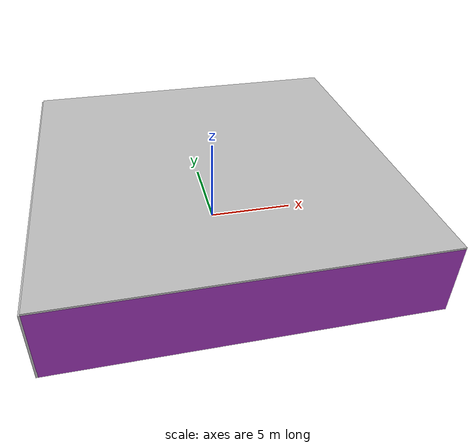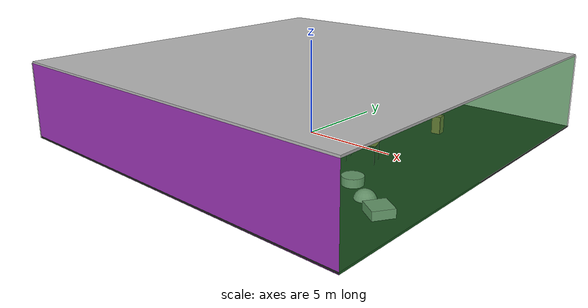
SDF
<sdf version="1.4">
 <world name="default">
  <physics type="ode">
   <max_step_size>0.001</max_step_size>
   <real_time_factor>1</real_time_factor>
   <real_time_update_rate>1000</real_time_update_rate>
   <gravity>0 0 -9.8</gravity>
  </physics>
  <scene><ambient>0.4 0.4 0.4 1</ambient><background>0.7 0.7 0.7 1</background><shadows>1</shadows></scene>
  <model name="Surrounding">
   <static>1</static>
   <link name="Ceiling">
    <collision name="Ceiling_Collision"><geometry><box><size>20 20 0.1</size></box></geometry></collision>
    <visual name="Ceiling_Visual">
     <geometry><box><size>20 20 0.1</size></box></geometry>
     <material>
      <script><uri>file://media/materials/scripts/gazebo.material</uri><name>Gazebo/Pioneer2Body</name></script>
     </material>
    </visual>
    <pose>0 0 4.05 0 0 0</pose>
   </link>
   <link name="Wall_South">
    <collision name="Wall_South_Collision">
     <geometry><box><size>20 0 4</size></box></geometry>
     <pose>0 0 2 0 -0 0</pose>
    </collision>
    <visual name="Wall_South_Visual">
     <pose>0 0 2 0 -0 0</pose>
     <geometry><box><size>20 0 4</size></box></geometry>
     <material>
      <script><uri>file://media/materials/scripts/gazebo.material</uri><name>Gazebo/PurpleGlow</name></script>
     </material>
    </visual>
    <velocity_decay><linear>0</linear><angular>0</angular></velocity_decay>
    <pose>0 -10 0 0 -0 0</pose>
   </link>
   <link name="Wall_East">
    <collision name="Wall_21_Collision">
     <geometry><box><size>20 0 4</size></box></geometry>
     <pose>0 0 2 0 -0 0</pose>
    </collision>
    <visual name="Wall_21_Visual">
     <pose>0 0 2 0 -0 0</pose>
     <geometry><box><size>20 0 4</size></box></geometry>
     <material>
      <script><uri>file://media/materials/scripts/gazebo.material</uri><name>Gazebo/GreenTransparent</name></script>
     </material>
    </visual>
    <velocity_decay><linear>0</linear><angular>0</angular></velocity_decay>
    <pose>10 0 0 0 -0 1.5708</pose>
   </link>
   <link name="Wall_North">
    <collision name="Wall_22_Collision">
     <geometry><box><size>20 0.2 4</size></box></geometry>
     <pose>0 0 2 0 -0 0</pose>
    </collision>
    <visual name="Wall_22_Visual">
     <pose>0 0 2 0 -0 0</pose>
     <geometry><box><size>20 0.2 4</size></box></geometry>
     <material>
      <script><uri>file://media/materials/scripts/gazebo.material</uri><name>Gazebo/WhiteGlow</name></script>
     </material>
    </visual>
    <velocity_decay><linear>0</linear><angular>0</angular></velocity_decay>
    <pose>0 10 0 0 -0 0</pose>
   </link>
   <link name="Wall_West">
    <collision name="Wall_23_Collision">
     <geometry><box><size>20 0.2 4</size></box></geometry>
     <pose>0 0 2 0 -0 0</pose>
    </collision>
    <visual name="Wall_23_Visual">
     <pose>0 0 2 0 -0 0</pose>
     <geometry><box><size>20 0.2 4</size></box></geometry>
     <material>
      <script><uri>file://media/materials/scripts/gazebo.material</uri><name>Gazebo/PioneerBody</name></script>
     </material>
    </visual>
    <velocity_decay><linear>0</linear><angular>0</angular></velocity_decay>
    <pose>-10 0 0 0 0 -1.5708</pose>
   </link>
   <link name="Ground_link">
    <collision name="collision">
     <pose>0 0 .05 0 -0 0</pose>
     <geometry><box><size>20 20 0.1</size></box></geometry>
    </collision>
    <visual name="visual">
     <pose>0 0 .05 0 -0 0</pose>
     <geometry><box><size>20 20 0.1</size></box></geometry>
     <material>
      <script><uri>file://media/materials/scripts/gazebo.material</uri><name>Gazebo/FlatBlack</name></script>
     </material>
    </visual>
   </link>
   <static>1</static>
  </model>
  <spherical_coordinates>
   <surface_model>EARTH_WGS84</surface_model>
   <latitude_deg>0</latitude_deg>
   <longitude_deg>0</longitude_deg>
   <elevation>0</elevation>
   <heading_deg>0</heading_deg>
  </spherical_coordinates>
  <light name="lightball_0" type="diffuse">
   <diffuse>0.8 0.8 0.8 1</diffuse>
   <specular>0.2 0.2 0.2 1</specular>
   <attenuation>
    <range>100</range>
    <constant>0.7</constant>
    <linear>0.01</linear>
    <quadratic>0.001</quadratic>
   </attenuation>
   <direction>-0.5 0.1 -0.9</direction>
   <pose>-6.36496596143 1.08589597862 2.80644439064 0 0 0</pose>
  </light>
  <light name="lightball_1" type="diffuse">
   <diffuse>0.8 0.8 0.8 1</diffuse>
   <specular>0.2 0.2 0.2 1</specular>
   <attenuation>
    <range>100</range>
    <constant>0.7</constant>
    <linear>0.01</linear>
    <quadratic>0.001</quadratic>
   </attenuation>
   <direction>-0.5 0.1 -0.9</direction>
   <pose>3.07609162149 7.20816338005 2.71283490085 0 0 0</pose>
  </light>
  <light name="lightball_2" type="diffuse">
   <diffuse>0.8 0.8 0.8 1</diffuse>
   <specular>0.2 0.2 0.2 1</specular>
   <attenuation>
    <range>100</range>
    <constant>0.7</constant>
    <linear>0.01</linear>
    <quadratic>0.001</quadratic>
   </attenuation>
   <direction>-0.5 0.1 -0.9</direction>
   <pose>-8.60524623035 7.05470306086 1.01632329862 0 0 0</pose>
  </light>
  <include>
   <uri>model://textured_shapes</uri>
   <pose>1.25511907414 -8.03016405105 0 0 0 1.23004905634</pose>
  </include>
  <include>
   <uri>model://textured_shapes</uri>
   <pose>1.45467277698 4.12221235173 0 0 0 1.66605879147</pose>
  </include>
  <include><uri>model://table</uri><pose>4.64337089304 -1.64484975466 0 0 0 0.355704340156</pose></include>
  <include><uri>model://cabinet</uri><pose>5.20797034289 4.23697275564 0 0 0 0.112142671261</pose></include>
  <include>
   <uri>model://textured_shapes</uri>
   <pose>7.28376880318 -4.95628361418 0 0 0 1.00084048305</pose>
  </include>
 </world>
</sdf>

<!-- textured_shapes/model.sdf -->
<sdf version="1.6">
  <model name="textured_shapes">
    <pose>0 0 0.5 0 0 0</pose>
    <link name="box">
      <pose>0 -1.5 0 0 0 0</pose>
      <collision name="collision">
        <geometry>
          <box>
            <size>1 1 1</size>
          </box>
        </geometry>
      </collision>
      <visual name="visual">
        <geometry>
          <box>
            <size>1 1 1</size>
          </box>
        </geometry>
        <material>
          <script>
            <uri>model://../model_source/models/textured_shapes/materials/scripts</uri>
            <uri>model://../model_source/models/textured_shapes/materials/textures</uri>
            <name>TexturedShape/Squares</name>
          </script>
        </material>
      </visual>
    </link>
    <link name="sphere">
      <collision name="collision">
        <geometry>
          <sphere>
            <radius>0.5</radius>
          </sphere>
        </geometry>
      </collision>
      <visual name="visual">
        <geometry>
          <sphere>
            <radius>0.5</radius>
          </sphere>
        </geometry>
        <material>
          <script>
            <uri>model://../model_source/models/textured_shapes/materials/scripts</uri>
            <uri>model://../model_source/models/textured_shapes/materials/textures</uri>
            <name>TexturedShape/Squares</name>
          </script>
        </material>
      </visual>
    </link>
    <link name="cylinder">
      <pose>0 1.5 0 0 0 0</pose>
      <collision name="collision">
        <geometry>
          <cylinder>
            <radius>0.5</radius>
            <length>1</length>
          </cylinder>
        </geometry>
      </collision>
      <visual name="visual">
        <geometry>
          <cylinder>
            <radius>0.5</radius>
            <length>1</length>
          </cylinder>
        </geometry>
        <material>
          <script>
            <uri>model://../model_source/models/textured_shapes/materials/scripts</uri>
            <uri>model://../model_source/models/textured_shapes/materials/textures</uri>
            <name>TexturedShape/Squares</name>
          </script>
        </material>
      </visual>
    </link>
  </model>
</sdf>

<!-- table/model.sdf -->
<sdf version="1.5">
  <model name="table">
    <static>true</static>
    <link name="link">
      <collision name="surface">
        <pose>0 0 1.0 0 0 0</pose>
        <geometry>
          <box>
            <size>1.5 0.8 0.03</size>
          </box>
        </geometry>
        <surface>
          <friction>
            <ode>
              <mu>0.6</mu>
              <mu2>0.6</mu2>
            </ode>
          </friction>
        </surface>
      </collision>
      <visual name="visual1">
        <pose>0 0 1.0 0 0 0</pose>
        <geometry>
          <box>
            <size>1.5 0.8 0.03</size>
          </box>
        </geometry>
        <material>
          <script>
            <uri>model://media/materials/scripts/gazebo.material</uri>
            <name>Gazebo/Wood</name>
          </script>
        </material>
      </visual>
      <collision name="front_left_leg">
        <pose>0.68 0.38 0.5 0 0 0</pose>
        <geometry>
          <cylinder>
            <radius>0.02</radius>
            <length>1.0</length>
          </cylinder>
        </geometry>
      </collision>
      <visual name="front_left_leg">
        <pose>0.68 0.38 0.5 0 0 0</pose>
        <geometry>
          <cylinder>
            <radius>0.02</radius>
            <length>1.0</length>
          </cylinder>
        </geometry>
        <material>
          <script>
            <uri>model://media/materials/scripts/gazebo.material</uri>
            <name>Gazebo/Grey</name>
          </script>
        </material>
      </visual>
      <collision name="front_right_leg">
        <pose>0.68 -0.38 0.5 0 0 0</pose>
        <geometry>
          <cylinder>
            <radius>0.02</radius>
            <length>1.0</length>
          </cylinder>
        </geometry>
      </collision>
      <visual name="front_right_leg">
        <pose>0.68 -0.38 0.5 0 0 0</pose>
        <geometry>
          <cylinder>
            <radius>0.02</radius>
            <length>1.0</length>
          </cylinder>
        </geometry>
        <material>
          <script>
            <uri>model://media/materials/scripts/gazebo.material</uri>
            <name>Gazebo/Grey</name>
          </script>
        </material>
      </visual>
      <collision name="back_right_leg">
        <pose>-0.68 -0.38 0.5 0 0 0</pose>
        <geometry>
          <cylinder>
            <radius>0.02</radius>
            <length>1.0</length>
          </cylinder>
        </geometry>
      </collision>
      <visual name="back_right_leg">
        <pose>-0.68 -0.38 0.5 0 0 0</pose>
        <geometry>
          <cylinder>
            <radius>0.02</radius>
            <length>1.0</length>
          </cylinder>
        </geometry>
        <material>
          <script>
            <uri>model://media/materials/scripts/gazebo.material</uri>
            <name>Gazebo/Grey</name>
          </script>
        </material>
      </visual>
      <collision name="back_left_leg">
        <pose>-0.68 0.38 0.5 0 0 0</pose>
        <geometry>
          <cylinder>
            <radius>0.02</radius>
            <length>1.0</length>
          </cylinder>
        </geometry>
      </collision>
      <visual name="back_left_leg">
        <pose>-0.68 0.38 0.5 0 0 0</pose>
        <geometry>
          <cylinder>
            <radius>0.02</radius>
            <length>1.0</length>
          </cylinder>
        </geometry>
        <material>
          <script>
            <uri>model://media/materials/scripts/gazebo.material</uri>
            <name>Gazebo/Grey</name>
          </script>
        </material>
      </visual>
    </link>
  </model>
</sdf>

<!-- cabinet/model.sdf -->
<sdf version="1.5">
  <model name="cabinet">
    <static>true</static>
    <link name="cabinet_bottom_plate">
      <inertial>
        <pose>0 0 -1 0 0 0</pose>
        <inertia>
          <ixx>2.050000</ixx>
          <ixy>0</ixy>
          <ixz>0</ixz>
          <iyy>2.050000</iyy>
          <iyz>0</iyz>
          <izz>2.050000</izz>
        </inertia>
        <mass>25.000000</mass>
      </inertial>
      <collision name="cabinet_bottom_plate_geom">
        <pose>0 0 0.010000 0 0 0</pose>
        <geometry>
          <box>
            <size>0.450000 0.450000 0.020000</size>
          </box>
        </geometry>
      </collision>
      <visual name="cabinet_bottom_plate_geom_visual">
        <pose>0 0 0.010000 0 0 0</pose>
        <geometry>
          <box>
            <size>0.450000 0.450000 0.020000</size>
          </box>
        </geometry>
        <material>
          <script>
            <uri>model://media/materials/scripts/gazebo.material</uri>
            <name>Gazebo/Wood</name>
          </script>
        </material>
      </visual>
      <collision name="cabinet_bottom_plate_geom_cabinet_back_plate">
        <pose>0.235000 0 0.510000 0 0 0</pose>
        <geometry>
          <box>
            <size>0.020000 0.450000 1.020000</size>
          </box>
        </geometry>
      </collision>
      <visual name="cabinet_bottom_plate_geom_cabinet_back_plate_visual">
        <pose>0.235000 0 0.510000 0 0 0</pose>
        <geometry>
          <box>
            <size>0.020000 0.450000 1.020000</size>
          </box>
        </geometry>
        <material>
          <script>
            <uri>model://media/materials/scripts/gazebo.material</uri>
            <name>Gazebo/Wood</name>
          </script>
        </material>
      </visual>
      <collision name="cabinet_bottom_plate_geom_cabinet_left_plate">
        <pose>0 0.235000 0.510000 0 0 0</pose>
        <geometry>
          <box>
            <size>0.450000 0.020000 1.020000</size>
          </box>
        </geometry>
      </collision>
      <visual name="cabinet_bottom_plate_geom_cabinet_left_plate_visual">
        <pose>0 0.235000 0.510000 0 0 0</pose>
        <geometry>
          <box>
            <size>0.450000 0.020000 1.020000</size>
          </box>
        </geometry>
        <material>
          <script>
            <uri>model://media/materials/scripts/gazebo.material</uri>
            <name>Gazebo/Wood</name>
          </script>
        </material>
      </visual>
      <collision name="cabinet_bottom_plate_geom_cabinet_middle_plate">
        <pose>0 0 0.510000 0 0 0</pose>
        <geometry>
          <box>
            <size>0.450000 0.450000 0.020000</size>
          </box>
        </geometry>
      </collision>
      <visual name="cabinet_bottom_plate_geom_cabinet_middle_plate_visual">
        <pose>0 0 0.510000 0 0 0</pose>
        <geometry>
          <box>
            <size>0.450000 0.450000 0.020000</size>
          </box>
        </geometry>
        <material>
          <script>
            <uri>model://media/materials/scripts/gazebo.material</uri>
            <name>Gazebo/Wood</name>
          </script>
        </material>
      </visual>
      <collision name="cabinet_bottom_plate_geom_cabinet_right_plate">
        <pose>0 -0.235000 0.510000 0 0 0</pose>
        <geometry>
          <box>
            <size>0.450000 0.020000 1.020000</size>
          </box>
        </geometry>
      </collision>
      <visual name="cabinet_bottom_plate_geom_cabinet_right_plate_visual">
        <pose>0 -0.235000 0.510000 0 0 0</pose>
        <geometry>
          <box>
            <size>0.450000 0.020000 1.020000</size>
          </box>
        </geometry>
        <material>
          <script>
            <uri>model://media/materials/scripts/gazebo.material</uri>
            <name>Gazebo/Wood</name>
          </script>
        </material>
      </visual>
      <collision name="cabinet_bottom_plate_geom_cabinet_top_plate">
        <pose>0 0 1.010000 0 0 0</pose>
        <geometry>
          <box>
            <size>0.450000 0.450000 0.020000</size>
          </box>
        </geometry>
      </collision>
      <visual name="cabinet_bottom_plate_geom_cabinet_top_plate_visual">
        <pose>0 0 1.010000 0 0 0</pose>
        <geometry>
          <box>
            <size>0.450000 0.450000 0.020000</size>
          </box>
        </geometry>
        <material>
          <script>
            <uri>model://media/materials/scripts/gazebo.material</uri>
            <name>Gazebo/Wood</name>
          </script>
        </material>
      </visual>
    </link>
  </model>
</sdf>
